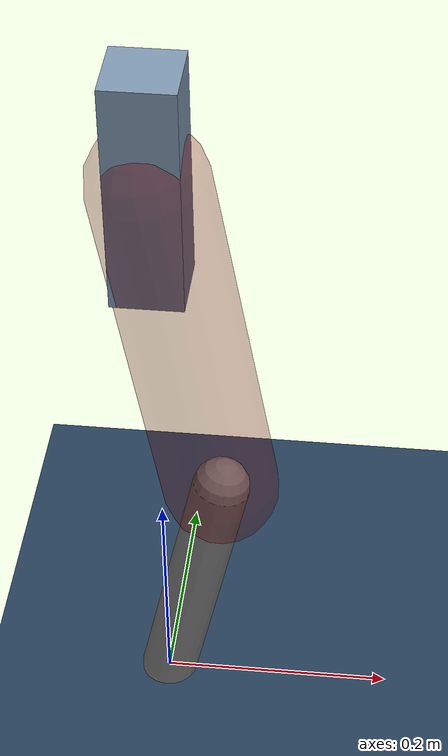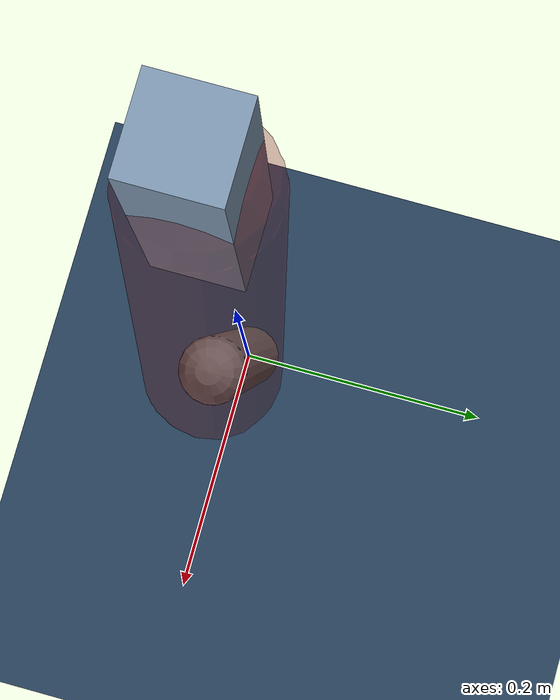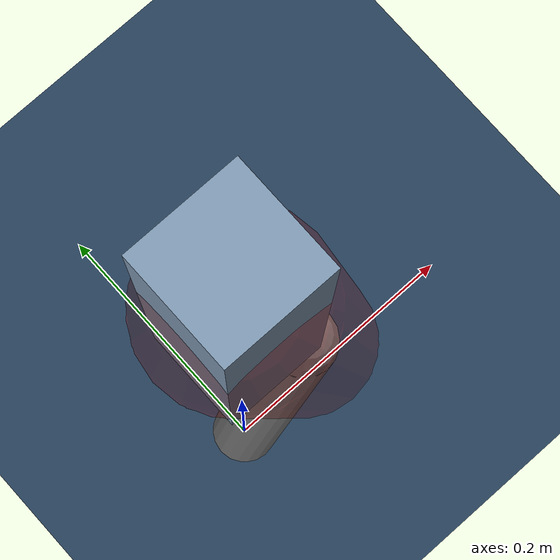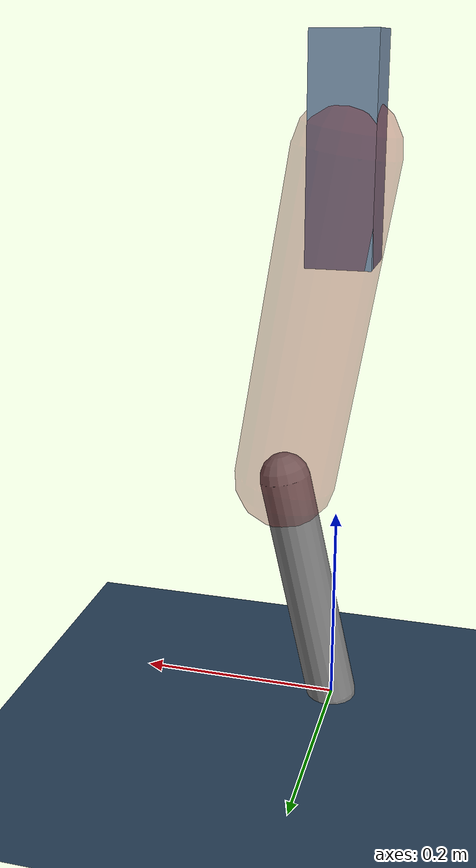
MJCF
<mujoco model="Hopper2D">
	<compiler inertiafromgeom="true" angle="radian" />
	<option timestep="0.001" integrator="implicit" cone="elliptic" solver="Newton" tolerance="1e-10" />

	<default>
		<geom contype="1" conaffinity="1" condim="3" friction="2 0.005 0.0001" solref="0.005 1" />
		<joint limited="true" damping="0.1" />
	</default>

	<asset>
		<texture name="skybox" type="skybox" builtin="gradient" rgb1=".4 .6 .8" rgb2="0 0 0" width="800" height="800" />
		<texture name="grid" type="2d" builtin="checker" rgb1=".1 .2 .3" rgb2=".2 .3 .4" width="300" height="300" mark="edge" markrgb=".2 .3 .4" />
		<material name="ground" texture="grid" texrepeat="1 1" texuniform="true" reflectance="0.1" />
		<material name="leg" rgba="0.5 0.6 0.7 1" />
	</asset>

	<worldbody>

		<geom name="floor" type="plane" size="5 5 0.25" material="ground" />

		<light directional="false" diffuse="0.8 0.8 0.8" specular="0.3 0.3 0.3" pos="0 0 2" dir="0 0 -1" />
		<light mode="targetbodycom" target="base" directional="false" diffuse="0.8 0.8 0.8" specular="0.3 0.3 0.3" pos="0 0 2" dir="0 0 -1" />

		<camera name="fixed" pos="0 -2 1" xyaxes="1 0 0 0 0 1" />
		<camera name="tracking" mode="trackcom" pos="0 -3 1" />

		<body name="root" pos="0 0 0.5471786705381487">
			<joint name="slide_x" type="slide" axis="1 0 0" range="-100 100" />
			<joint name="slide_z" type="slide" axis="0 0 1" range="0 10" />

			<body name="base" pos="0 0 0">
				<geom name="torso" type="box" size="0.03 0.03 0.1" mass="2.074" material="leg" />

				<body name="link1" pos="0 0 0" euler="0 1.4063931154866351 0">
					<joint type="hinge" axis="0 -1 0" pos="0 0 0" name="hinge1" limited="true" range="-3.14 3.14" stiffness="0" damping="0.1" />
					<geom name="thigh" type="capsule" fromto="0 0 0 0.3177449740480135 0 0" size="0.05" rgba="0.5 0 0 0.3" mass="1.0370859273344377" />

					<body name="link2" pos="0.3177449740480135 0 0" euler="0 0.38334098070253525 0">
						<joint type="hinge" axis="0 -1 0" pos="0 0 0" name="hinge2" limited="true" range="-3.14 3.14" stiffness="0" damping="0.1" />
						<geom name="shank" type="capsule" fromto="0 0 0 0.23943369649013524 0 0" size="0.025" mass="0.43379032684112173" />

					</body>
				</body>
			</body>
		</body>
	</worldbody>

	<actuator>
		<motor name="torque1" joint="hinge1" ctrlrange="-76.29987717124354 76.29987717124354" ctrllimited="true" gear="1" />
		<motor name="torque2" joint="hinge2" ctrlrange="-77.52430511515135 77.52430511515135" ctrllimited="true" gear="1" />
	</actuator>
</mujoco>
